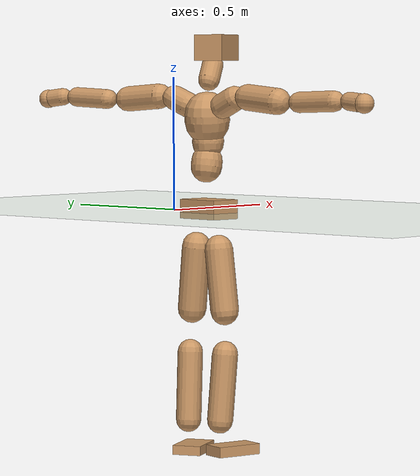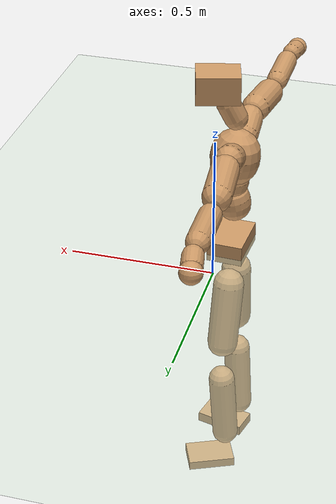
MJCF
<mujoco model="humanoid">
  <compiler coordinate="local" angle="radian"/>
  <default>
    <joint damping="0.0" armature="0.01" stiffness="0.0" limited="true"/>
    <geom conaffinity="1" condim="3" contype="7" margin="0.001" rgba="0.8 0.6 .4 1"/>
  </default>
  <asset>
    <texture type="skybox" builtin="gradient" rgb1=".4 .5 .6" rgb2="0 0 0" width="100" height="100"/>
    <texture builtin="flat" height="1278" mark="cross" markrgb="1 1 1" name="texgeom" random="0.01" rgb1="0.8 0.6 0.4" rgb2="0.8 0.6 0.4" type="cube" width="127"/>
    <texture builtin="checker" height="100" name="texplane" rgb1="0 0 0" rgb2="0.8 0.8 0.8" type="2d" width="100"/>
    <material name="MatPlane" reflectance="0.5" shininess="1" specular="1" texrepeat="60 60" texture="texplane"/>
    <material name="geom" texture="texgeom" texuniform="true"/>
  </asset>
  <worldbody>
    <light cutoff="100" diffuse="1 1 1" dir="-0 0 -1.3" directional="true" exponent="1" pos="0 0 1.3" specular=".1 .1 .1"/>
    <geom conaffinity="1" condim="3" name="floor" pos="0 0 0" rgba="0.8 0.9 0.8 1" size="100 100 .2" type="plane" material="MatPlane"/>
    <body name="Pelvis" pos="-0.0052 -0.1927 0.0191">
      <freejoint name="Pelvis"/>
      <geom type="box" contype="1" conaffinity="1" density="500" pos="-0.0118 0.0007 -0.0078" size="0.0622 0.0885 0.036" quat="0.9996 0.0000 0.0000 -0.0279" name="Pelvis"/>
      <body name="L_Hip" pos="-0.0225 0.0467 -0.0709">
        <joint name="L_Hip_x" type="hinge" pos="0 0 0" axis="1 0 0" stiffness="800" damping="80" armature="0.02" range="-180.0000 180.0000"/>
        <joint name="L_Hip_y" type="hinge" pos="0 0 0" axis="0 1 0" stiffness="800" damping="80" armature="0.02" range="-180.0000 180.0000"/>
        <joint name="L_Hip_z" type="hinge" pos="0 0 0" axis="0 0 1" stiffness="800" damping="80" armature="0.02" range="-180.0000 180.0000"/>
        <geom type="capsule" contype="1" conaffinity="1" density="500" fromto="0.0036 0.0103 -0.0791 0.0142 0.0412 -0.3162" size="0.054" name="L_Hip"/>
        <body name="L_Knee" pos="0.0178 0.0515 -0.3953">
          <joint name="L_Knee_x" type="hinge" pos="0 0 0" axis="1 0 0" stiffness="800" damping="80" armature="0.02" range="-180.0000 180.0000"/>
          <joint name="L_Knee_y" type="hinge" pos="0 0 0" axis="0 1 0" stiffness="800" damping="80" armature="0.02" range="-180.0000 180.0000"/>
          <joint name="L_Knee_z" type="hinge" pos="0 0 0" axis="0 0 1" stiffness="800" damping="80" armature="0.02" range="-180.0000 180.0000"/>
          <geom type="capsule" contype="1" conaffinity="1" density="500" fromto="-0.0055 -0.0022 -0.0852 -0.0219 -0.0089 -0.3409" size="0.0474" name="L_Knee"/>
          <body name="L_Ankle" pos="-0.0274 -0.0111 -0.4261">
            <joint name="L_Ankle_x" type="hinge" pos="0 0 0" axis="1 0 0" stiffness="800" damping="80" armature="0.02" range="-180.0000 180.0000"/>
            <joint name="L_Ankle_y" type="hinge" pos="0 0 0" axis="0 1 0" stiffness="800" damping="80" armature="0.02" range="-180.0000 180.0000"/>
            <joint name="L_Ankle_z" type="hinge" pos="0 0 0" axis="0 0 1" stiffness="800" damping="80" armature="0.02" range="-180.0000 180.0000"/>
            <geom type="box" contype="1" conaffinity="1" density="500" pos="0.0583 0.0256 -0.0301" size="0.0851 0.0542 0.0177" quat="0.9787 0.0000 0.0000 0.2053" name="L_Ankle"/>
            <body name="L_Toe" pos="0.1165 0.0511 -0.0603">
              <joint name="L_Toe_x" type="hinge" pos="0 0 0" axis="1 0 0" stiffness="500" damping="50" armature="0.02" range="-180.0000 180.0000"/>
              <joint name="L_Toe_y" type="hinge" pos="0 0 0" axis="0 1 0" stiffness="500" damping="50" armature="0.02" range="-180.0000 180.0000"/>
              <joint name="L_Toe_z" type="hinge" pos="0 0 0" axis="0 0 1" stiffness="500" damping="50" armature="0.02" range="-180.0000 180.0000"/>
              <geom type="box" contype="1" conaffinity="1" density="500" pos="0.0000 0.0000 0.0315" size="0.001 0.0026 0.001" quat="0.9779 0.0000 0.0000 0.2091" name="L_Toe"/>
            </body>
          </body>
        </body>
      </body>
      <body name="R_Hip" pos="-0.02 -0.0468 -0.0782">
        <joint name="R_Hip_x" type="hinge" pos="0 0 0" axis="1 0 0" stiffness="800" damping="80" armature="0.02" range="-180.0000 180.0000"/>
        <joint name="R_Hip_y" type="hinge" pos="0 0 0" axis="0 1 0" stiffness="800" damping="80" armature="0.02" range="-180.0000 180.0000"/>
        <joint name="R_Hip_z" type="hinge" pos="0 0 0" axis="0 0 1" stiffness="800" damping="80" armature="0.02" range="-180.0000 180.0000"/>
        <geom type="capsule" contype="1" conaffinity="1" density="500" fromto="0.0005 -0.0094 -0.0766 0.0019 -0.0376 -0.3063" size="0.0528" name="R_Hip"/>
        <body name="R_Knee" pos="0.0024 -0.047 -0.3829">
          <joint name="R_Knee_x" type="hinge" pos="0 0 0" axis="1 0 0" stiffness="800" damping="80" armature="0.02" range="-180.0000 180.0000"/>
          <joint name="R_Knee_y" type="hinge" pos="0 0 0" axis="0 1 0" stiffness="800" damping="80" armature="0.02" range="-180.0000 180.0000"/>
          <joint name="R_Knee_z" type="hinge" pos="0 0 0" axis="0 0 1" stiffness="800" damping="80" armature="0.02" range="-180.0000 180.0000"/>
          <geom type="capsule" contype="1" conaffinity="1" density="500" fromto="-0.0053 0.0033 -0.0830 -0.0213 0.0131 -0.3320" size="0.0483" name="R_Knee"/>
          <body name="R_Ankle" pos="-0.0266 0.0164 -0.415">
            <joint name="R_Ankle_x" type="hinge" pos="0 0 0" axis="1 0 0" stiffness="800" damping="80" armature="0.02" range="-180.0000 180.0000"/>
            <joint name="R_Ankle_y" type="hinge" pos="0 0 0" axis="0 1 0" stiffness="800" damping="80" armature="0.02" range="-180.0000 180.0000"/>
            <joint name="R_Ankle_z" type="hinge" pos="0 0 0" axis="0 0 1" stiffness="800" damping="80" armature="0.02" range="-180.0000 180.0000"/>
            <geom type="box" contype="1" conaffinity="1" density="500" pos="0.0633 -0.0155 -0.0302" size="0.09 0.0469 0.0197" quat="0.9928 0.0000 0.0000 -0.1198" name="R_Ankle"/>
            <body name="R_Toe" pos="0.1265 -0.031 -0.0604">
              <joint name="R_Toe_x" type="hinge" pos="0 0 0" axis="1 0 0" stiffness="500" damping="50" armature="0.02" range="-180.0000 180.0000"/>
              <joint name="R_Toe_y" type="hinge" pos="0 0 0" axis="0 1 0" stiffness="500" damping="50" armature="0.02" range="-180.0000 180.0000"/>
              <joint name="R_Toe_z" type="hinge" pos="0 0 0" axis="0 0 1" stiffness="500" damping="50" armature="0.02" range="-180.0000 180.0000"/>
              <geom type="box" contype="1" conaffinity="1" density="500" pos="0.0000 0.0000 0.0321" size="0.0008 0.0023 0.0011" quat="0.9939 0.0000 0.0000 -0.1106" name="R_Toe"/>
            </body>
          </body>
        </body>
      </body>
      <body name="Torso" pos="-0.0283 0.0041 0.1021">
        <joint name="Torso_x" type="hinge" pos="0 0 0" axis="1 0 0" stiffness="1000" damping="100" armature="0.02" range="-180.0000 180.0000"/>
        <joint name="Torso_y" type="hinge" pos="0 0 0" axis="0 1 0" stiffness="1000" damping="100" armature="0.02" range="-180.0000 180.0000"/>
        <joint name="Torso_z" type="hinge" pos="0 0 0" axis="0 0 1" stiffness="1000" damping="100" armature="0.02" range="-180.0000 180.0000"/>
        <geom type="capsule" contype="1" conaffinity="1" density="500" fromto="0.0124 0.0020 0.0704 0.0083 0.0013 0.0469" size="0.0581" name="Torso"/>
        <body name="Spine" pos="0.0207 0.0033 0.1174">
          <joint name="Spine_x" type="hinge" pos="0 0 0" axis="1 0 0" stiffness="1000" damping="100" armature="0.02" range="-180.0000 180.0000"/>
          <joint name="Spine_y" type="hinge" pos="0 0 0" axis="0 1 0" stiffness="1000" damping="100" armature="0.02" range="-180.0000 180.0000"/>
          <joint name="Spine_z" type="hinge" pos="0 0 0" axis="0 0 1" stiffness="1000" damping="100" armature="0.02" range="-180.0000 180.0000"/>
          <geom type="capsule" contype="1" conaffinity="1" density="500" fromto="-0.0013 -0.0002 0.0287 -0.0009 -0.0001 0.0191" size="0.0597" name="Spine"/>
          <body name="Chest" pos="-0.0022 -0.0004 0.0478">
            <joint name="Chest_x" type="hinge" pos="0 0 0" axis="1 0 0" stiffness="1000" damping="100" armature="0.02" range="-180.0000 180.0000"/>
            <joint name="Chest_y" type="hinge" pos="0 0 0" axis="0 1 0" stiffness="1000" damping="100" armature="0.02" range="-180.0000 180.0000"/>
            <joint name="Chest_z" type="hinge" pos="0 0 0" axis="0 0 1" stiffness="1000" damping="100" armature="0.02" range="-180.0000 180.0000"/>
            <geom type="capsule" contype="1" conaffinity="1" density="500" fromto="-0.0095 -0.0045 0.0776 -0.0063 -0.0030 0.0517" size="0.0848" name="Chest"/>
            <body name="Neck" pos="-0.015 -0.013 0.1874">
              <joint name="Neck_x" type="hinge" pos="0 0 0" axis="1 0 0" stiffness="500" damping="50" armature="0.02" range="-180.0000 180.0000"/>
              <joint name="Neck_y" type="hinge" pos="0 0 0" axis="0 1 0" stiffness="500" damping="50" armature="0.02" range="-180.0000 180.0000"/>
              <joint name="Neck_z" type="hinge" pos="0 0 0" axis="0 0 1" stiffness="500" damping="50" armature="0.02" range="-180.0000 180.0000"/>
              <geom type="capsule" contype="1" conaffinity="1" density="500" fromto="0.0090 0.0022 0.0182 0.0359 0.0087 0.0727" size="0.0403" name="Neck"/>
              <body name="Head" pos="0.0449 0.0109 0.0909">
                <joint name="Head_x" type="hinge" pos="0 0 0" axis="1 0 0" stiffness="500" damping="50" armature="0.02" range="-180.0000 180.0000"/>
                <joint name="Head_y" type="hinge" pos="0 0 0" axis="0 1 0" stiffness="500" damping="50" armature="0.02" range="-180.0000 180.0000"/>
                <joint name="Head_z" type="hinge" pos="0 0 0" axis="0 0 1" stiffness="500" damping="50" armature="0.02" range="-180.0000 180.0000"/>
                <geom type="box" contype="1" conaffinity="1" density="500" pos="0.0234 0.0065 0.0464" size="0.0732 0.0566 0.0484" quat="0.9910 0.0000 0.0000 0.1342" name="Head"/>
              </body>
            </body>
            <body name="L_Thorax" pos="-0.0136 0.0608 0.1014">
              <joint name="L_Thorax_x" type="hinge" pos="0 0 0" axis="1 0 0" stiffness="500" damping="50" armature="0.02" range="-180.0000 180.0000"/>
              <joint name="L_Thorax_y" type="hinge" pos="0 0 0" axis="0 1 0" stiffness="500" damping="50" armature="0.02" range="-180.0000 180.0000"/>
              <joint name="L_Thorax_z" type="hinge" pos="0 0 0" axis="0 0 1" stiffness="500" damping="50" armature="0.02" range="-180.0000 180.0000"/>
              <geom type="capsule" contype="1" conaffinity="1" density="500" fromto="-0.0019 0.0219 0.0091 -0.0074 0.0876 0.0366" size="0.0465" name="L_Thorax"/>
              <body name="L_Shoulder" pos="-0.0093 0.1095 0.0457">
                <joint name="L_Shoulder_x" type="hinge" pos="0 0 0" axis="1 0 0" stiffness="500" damping="50" armature="0.02" range="-720.0000 720.0000"/>
                <joint name="L_Shoulder_y" type="hinge" pos="0 0 0" axis="0 1 0" stiffness="500" damping="50" armature="0.02" range="-720.0000 720.0000"/>
                <joint name="L_Shoulder_z" type="hinge" pos="0 0 0" axis="0 0 1" stiffness="500" damping="50" armature="0.02" range="-720.0000 720.0000"/>
                <geom type="capsule" contype="1" conaffinity="1" density="500" fromto="-0.0042 0.0508 -0.0037 -0.0166 0.2030 -0.0148" size="0.0475" name="L_Shoulder"/>
                <body name="L_Elbow" pos="-0.0208 0.2538 -0.0184">
                  <joint name="L_Elbow_x" type="hinge" pos="0 0 0" axis="1 0 0" stiffness="500" damping="50" armature="0.02" range="-720.0000 720.0000"/>
                  <joint name="L_Elbow_y" type="hinge" pos="0 0 0" axis="0 1 0" stiffness="500" damping="50" armature="0.02" range="-720.0000 720.0000"/>
                  <joint name="L_Elbow_z" type="hinge" pos="0 0 0" axis="0 0 1" stiffness="500" damping="50" armature="0.02" range="-720.0000 720.0000"/>
                  <geom type="capsule" contype="1" conaffinity="1" density="500" fromto="-0.0017 0.0538 0.0024 -0.0067 0.2152 0.0097" size="0.0374" name="L_Elbow"/>
                  <body name="L_Wrist" pos="-0.0084 0.269 0.0121">
                    <joint name="L_Wrist_x" type="hinge" pos="0 0 0" axis="1 0 0" stiffness="300" damping="30" armature="0.02" range="-180.0000 180.0000"/>
                    <joint name="L_Wrist_y" type="hinge" pos="0 0 0" axis="0 1 0" stiffness="300" damping="30" armature="0.02" range="-180.0000 180.0000"/>
                    <joint name="L_Wrist_z" type="hinge" pos="0 0 0" axis="0 0 1" stiffness="300" damping="30" armature="0.02" range="-180.0000 180.0000"/>
                    <geom type="capsule" contype="1" conaffinity="1" density="500" fromto="-0.0033 0.0177 -0.0021 -0.0131 0.0706 -0.0086" size="0.0334" name="L_Wrist"/>
                    <body name="L_Hand" pos="-0.0164 0.0883 -0.0107">
                      <joint name="L_Hand_x" type="hinge" pos="0 0 0" axis="1 0 0" stiffness="300" damping="30" armature="0.02" range="-180.0000 180.0000"/>
                      <joint name="L_Hand_y" type="hinge" pos="0 0 0" axis="0 1 0" stiffness="300" damping="30" armature="0.02" range="-180.0000 180.0000"/>
                      <joint name="L_Hand_z" type="hinge" pos="0 0 0" axis="0 0 1" stiffness="300" damping="30" armature="0.02" range="-180.0000 180.0000"/>
                      <geom type="sphere" contype="1" conaffinity="1" density="500" size="0.0358" pos="0.0000 0.0000 0.0000" name="L_Hand"/>
                    </body>
                  </body>
                </body>
              </body>
            </body>
            <body name="R_Thorax" pos="-0.019 -0.0703 0.0992">
              <joint name="R_Thorax_x" type="hinge" pos="0 0 0" axis="1 0 0" stiffness="500" damping="50" armature="0.02" range="-180.0000 180.0000"/>
              <joint name="R_Thorax_y" type="hinge" pos="0 0 0" axis="0 1 0" stiffness="500" damping="50" armature="0.02" range="-180.0000 180.0000"/>
              <joint name="R_Thorax_z" type="hinge" pos="0 0 0" axis="0 0 1" stiffness="500" damping="50" armature="0.02" range="-180.0000 180.0000"/>
              <geom type="capsule" contype="1" conaffinity="1" density="500" fromto="-0.0004 -0.0198 0.0094 -0.0016 -0.0792 0.0375" size="0.047" name="R_Thorax"/>
              <body name="R_Shoulder" pos="-0.002 -0.099 0.0469">
                <joint name="R_Shoulder_x" type="hinge" pos="0 0 0" axis="1 0 0" stiffness="500" damping="50" armature="0.02" range="-720.0000 720.0000"/>
                <joint name="R_Shoulder_y" type="hinge" pos="0 0 0" axis="0 1 0" stiffness="500" damping="50" armature="0.02" range="-720.0000 720.0000"/>
                <joint name="R_Shoulder_z" type="hinge" pos="0 0 0" axis="0 0 1" stiffness="500" damping="50" armature="0.02" range="-720.0000 720.0000"/>
                <geom type="capsule" contype="1" conaffinity="1" density="500" fromto="-0.0051 -0.0512 -0.0044 -0.0205 -0.2046 -0.0178" size="0.0485" name="R_Shoulder"/>
                <body name="R_Elbow" pos="-0.0256 -0.2558 -0.0222">
                  <joint name="R_Elbow_x" type="hinge" pos="0 0 0" axis="1 0 0" stiffness="500" damping="50" armature="0.02" range="-720.0000 720.0000"/>
                  <joint name="R_Elbow_y" type="hinge" pos="0 0 0" axis="0 1 0" stiffness="500" damping="50" armature="0.02" range="-720.0000 720.0000"/>
                  <joint name="R_Elbow_z" type="hinge" pos="0 0 0" axis="0 0 1" stiffness="500" damping="50" armature="0.02" range="-720.0000 720.0000"/>
                  <geom type="capsule" contype="1" conaffinity="1" density="500" fromto="-0.0008 -0.0544 0.0018 -0.0033 -0.2177 0.0073" size="0.0375" name="R_Elbow"/>
                  <body name="R_Wrist" pos="-0.0042 -0.2721 0.0091">
                    <joint name="R_Wrist_x" type="hinge" pos="0 0 0" axis="1 0 0" stiffness="300" damping="30" armature="0.02" range="-180.0000 180.0000"/>
                    <joint name="R_Wrist_y" type="hinge" pos="0 0 0" axis="0 1 0" stiffness="300" damping="30" armature="0.02" range="-180.0000 180.0000"/>
                    <joint name="R_Wrist_z" type="hinge" pos="0 0 0" axis="0 0 1" stiffness="300" damping="30" armature="0.02" range="-180.0000 180.0000"/>
                    <geom type="capsule" contype="1" conaffinity="1" density="500" fromto="-0.0022 -0.0176 -0.0017 -0.0087 -0.0702 -0.0068" size="0.0332" name="R_Wrist"/>
                    <body name="R_Hand" pos="-0.0108 -0.0878 -0.0085">
                      <joint name="R_Hand_x" type="hinge" pos="0 0 0" axis="1 0 0" stiffness="300" damping="30" armature="0.02" range="-180.0000 180.0000"/>
                      <joint name="R_Hand_y" type="hinge" pos="0 0 0" axis="0 1 0" stiffness="300" damping="30" armature="0.02" range="-180.0000 180.0000"/>
                      <joint name="R_Hand_z" type="hinge" pos="0 0 0" axis="0 0 1" stiffness="300" damping="30" armature="0.02" range="-180.0000 180.0000"/>
                      <geom type="sphere" contype="1" conaffinity="1" density="500" size="0.0354" pos="0.0000 0.0000 0.0000" name="R_Hand"/>
                    </body>
                  </body>
                </body>
              </body>
            </body>
          </body>
        </body>
      </body>
    </body>
  </worldbody>
  <actuator>
    <motor name="L_Hip_x" joint="L_Hip_x" gear="500"/>
    <motor name="L_Hip_y" joint="L_Hip_y" gear="500"/>
    <motor name="L_Hip_z" joint="L_Hip_z" gear="500"/>
    <motor name="L_Knee_x" joint="L_Knee_x" gear="500"/>
    <motor name="L_Knee_y" joint="L_Knee_y" gear="500"/>
    <motor name="L_Knee_z" joint="L_Knee_z" gear="500"/>
    <motor name="L_Ankle_x" joint="L_Ankle_x" gear="500"/>
    <motor name="L_Ankle_y" joint="L_Ankle_y" gear="500"/>
    <motor name="L_Ankle_z" joint="L_Ankle_z" gear="500"/>
    <motor name="L_Toe_x" joint="L_Toe_x" gear="500"/>
    <motor name="L_Toe_y" joint="L_Toe_y" gear="500"/>
    <motor name="L_Toe_z" joint="L_Toe_z" gear="500"/>
    <motor name="R_Hip_x" joint="R_Hip_x" gear="500"/>
    <motor name="R_Hip_y" joint="R_Hip_y" gear="500"/>
    <motor name="R_Hip_z" joint="R_Hip_z" gear="500"/>
    <motor name="R_Knee_x" joint="R_Knee_x" gear="500"/>
    <motor name="R_Knee_y" joint="R_Knee_y" gear="500"/>
    <motor name="R_Knee_z" joint="R_Knee_z" gear="500"/>
    <motor name="R_Ankle_x" joint="R_Ankle_x" gear="500"/>
    <motor name="R_Ankle_y" joint="R_Ankle_y" gear="500"/>
    <motor name="R_Ankle_z" joint="R_Ankle_z" gear="500"/>
    <motor name="R_Toe_x" joint="R_Toe_x" gear="500"/>
    <motor name="R_Toe_y" joint="R_Toe_y" gear="500"/>
    <motor name="R_Toe_z" joint="R_Toe_z" gear="500"/>
    <motor name="Torso_x" joint="Torso_x" gear="500"/>
    <motor name="Torso_y" joint="Torso_y" gear="500"/>
    <motor name="Torso_z" joint="Torso_z" gear="500"/>
    <motor name="Spine_x" joint="Spine_x" gear="500"/>
    <motor name="Spine_y" joint="Spine_y" gear="500"/>
    <motor name="Spine_z" joint="Spine_z" gear="500"/>
    <motor name="Chest_x" joint="Chest_x" gear="500"/>
    <motor name="Chest_y" joint="Chest_y" gear="500"/>
    <motor name="Chest_z" joint="Chest_z" gear="500"/>
    <motor name="Neck_x" joint="Neck_x" gear="500"/>
    <motor name="Neck_y" joint="Neck_y" gear="500"/>
    <motor name="Neck_z" joint="Neck_z" gear="500"/>
    <motor name="Head_x" joint="Head_x" gear="500"/>
    <motor name="Head_y" joint="Head_y" gear="500"/>
    <motor name="Head_z" joint="Head_z" gear="500"/>
    <motor name="L_Thorax_x" joint="L_Thorax_x" gear="500"/>
    <motor name="L_Thorax_y" joint="L_Thorax_y" gear="500"/>
    <motor name="L_Thorax_z" joint="L_Thorax_z" gear="500"/>
    <motor name="L_Shoulder_x" joint="L_Shoulder_x" gear="500"/>
    <motor name="L_Shoulder_y" joint="L_Shoulder_y" gear="500"/>
    <motor name="L_Shoulder_z" joint="L_Shoulder_z" gear="500"/>
    <motor name="L_Elbow_x" joint="L_Elbow_x" gear="500"/>
    <motor name="L_Elbow_y" joint="L_Elbow_y" gear="500"/>
    <motor name="L_Elbow_z" joint="L_Elbow_z" gear="500"/>
    <motor name="L_Wrist_x" joint="L_Wrist_x" gear="500"/>
    <motor name="L_Wrist_y" joint="L_Wrist_y" gear="500"/>
    <motor name="L_Wrist_z" joint="L_Wrist_z" gear="500"/>
    <motor name="L_Hand_x" joint="L_Hand_x" gear="500"/>
    <motor name="L_Hand_y" joint="L_Hand_y" gear="500"/>
    <motor name="L_Hand_z" joint="L_Hand_z" gear="500"/>
    <motor name="R_Thorax_x" joint="R_Thorax_x" gear="500"/>
    <motor name="R_Thorax_y" joint="R_Thorax_y" gear="500"/>
    <motor name="R_Thorax_z" joint="R_Thorax_z" gear="500"/>
    <motor name="R_Shoulder_x" joint="R_Shoulder_x" gear="500"/>
    <motor name="R_Shoulder_y" joint="R_Shoulder_y" gear="500"/>
    <motor name="R_Shoulder_z" joint="R_Shoulder_z" gear="500"/>
    <motor name="R_Elbow_x" joint="R_Elbow_x" gear="500"/>
    <motor name="R_Elbow_y" joint="R_Elbow_y" gear="500"/>
    <motor name="R_Elbow_z" joint="R_Elbow_z" gear="500"/>
    <motor name="R_Wrist_x" joint="R_Wrist_x" gear="500"/>
    <motor name="R_Wrist_y" joint="R_Wrist_y" gear="500"/>
    <motor name="R_Wrist_z" joint="R_Wrist_z" gear="500"/>
    <motor name="R_Hand_x" joint="R_Hand_x" gear="500"/>
    <motor name="R_Hand_y" joint="R_Hand_y" gear="500"/>
    <motor name="R_Hand_z" joint="R_Hand_z" gear="500"/>
  </actuator>
  <contact>
    <exclude body1="Torso" body2="Chest"/>
    <exclude body1="Head" body2="Chest"/>
    <exclude body1="R_Knee" body2="R_Toe"/>
    <exclude body1="R_Knee" body2="L_Ankle"/>
    <exclude body1="R_Knee" body2="L_Toe"/>
    <exclude body1="L_Knee" body2="L_Toe"/>
    <exclude body1="L_Knee" body2="R_Ankle"/>
    <exclude body1="L_Knee" body2="R_Toe"/>
    <exclude body1="L_Shoulder" body2="Chest"/>
    <exclude body1="R_Shoulder" body2="Chest"/>
  </contact>
  <sensor/>
  <size njmax="700" nconmax="700"/>
</mujoco>
